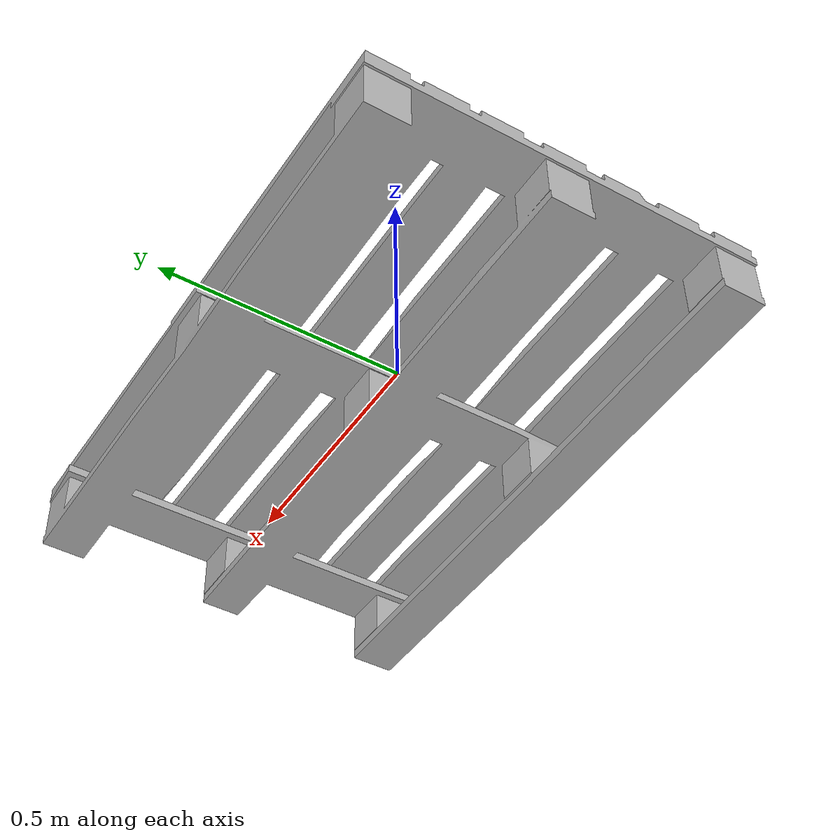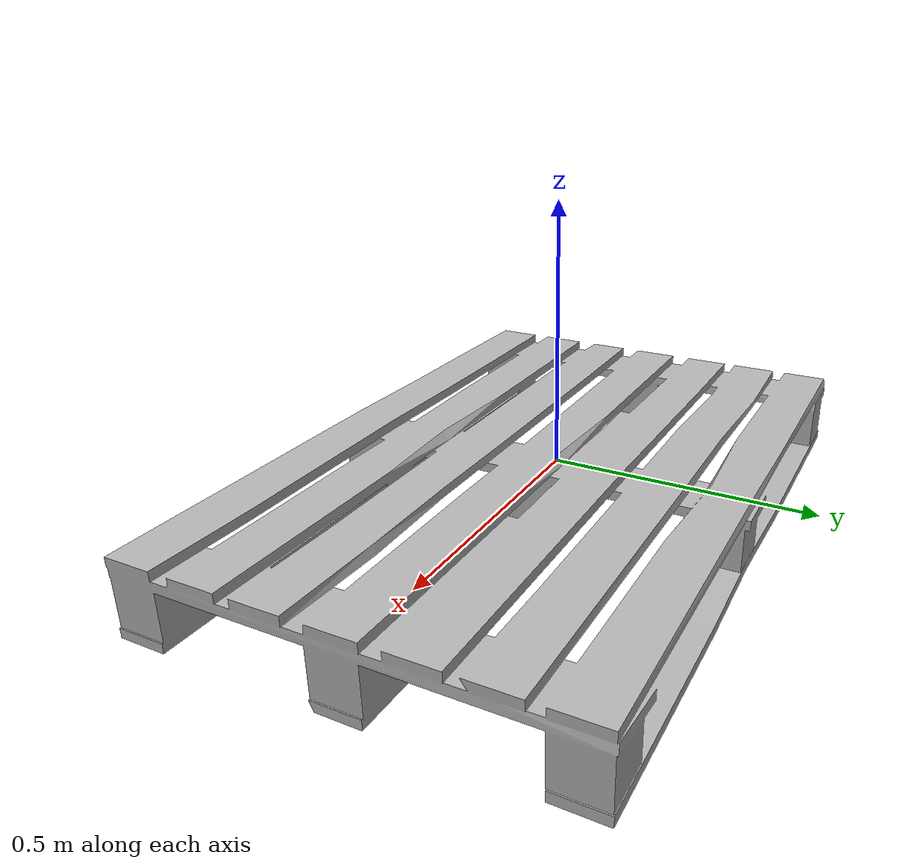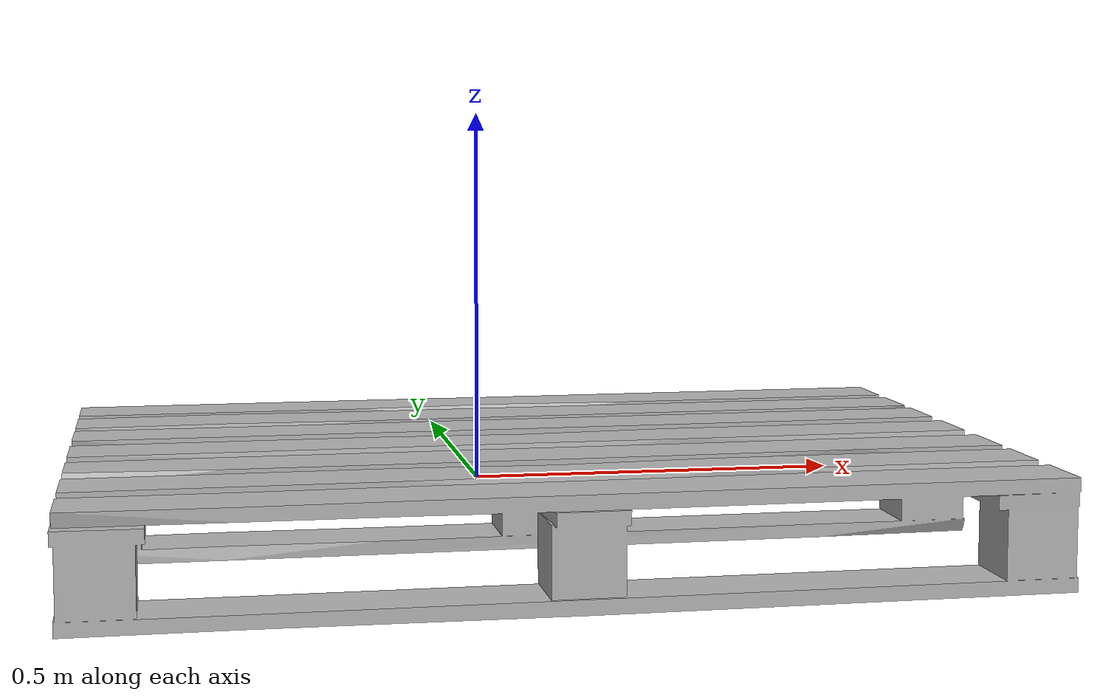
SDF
<?xml version="1.0" ?>
<sdf version="1.6">
  <model name="wooden pallet">
    <link name="link">
    <pose>0 0 0 1.57 0 1.57</pose>
      <inertial>
        <mass>20.0</mass>
        <inertia>
          <ixx>2.43</ixx>
          <ixy>0</ixy>
          <ixz>0</ixz>
          <iyy>1.10</iyy>
          <iyz>0</iyz>
          <izz>3.47</izz>
        </inertia>
      </inertial>
      <collision name="collision">
        <pose>0 0 0.05 0 0 0</pose>
        <geometry>
          <mesh>
            <scale>0.25 0.25 0.25</scale>
            <uri>model://wooden_pallet/meshes/pallet.obj</uri>
          </mesh>
        </geometry>
      </collision>
      <visual name="visual">
        <pose>0 0 0.05 0 0 0</pose>
        <geometry>
          <mesh>
            <scale>0.25 0.25 0.25</scale>
            <uri>model://wooden_pallet/meshes/pallet.obj</uri>
          </mesh>
        </geometry>
      </visual>
    </link>
  </model>
</sdf>
